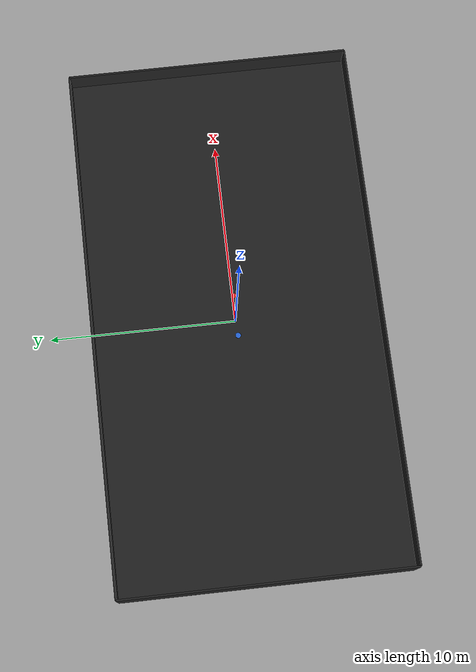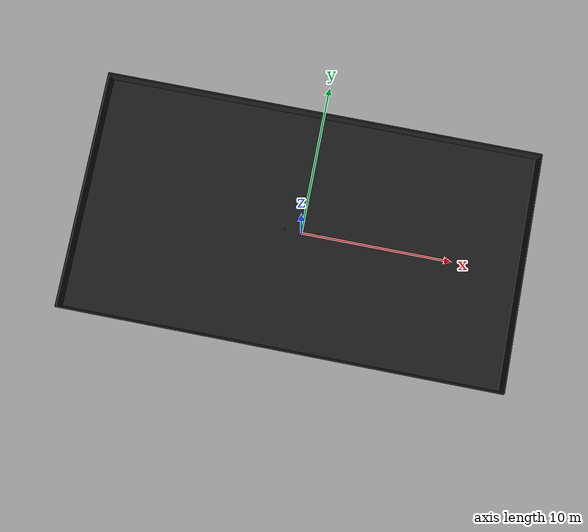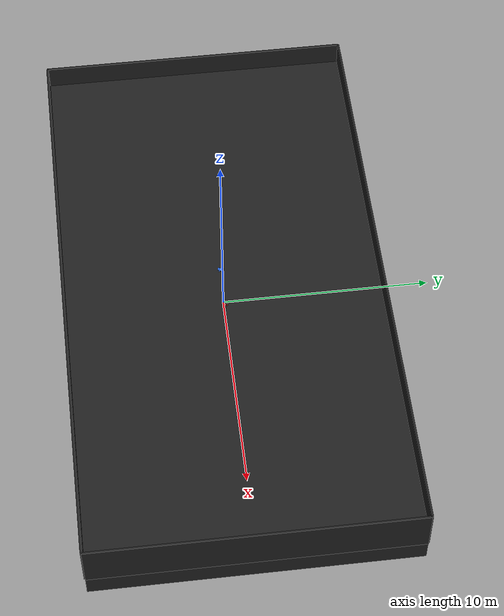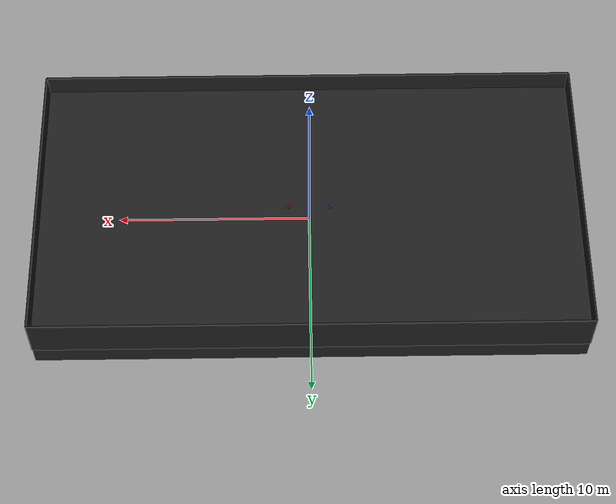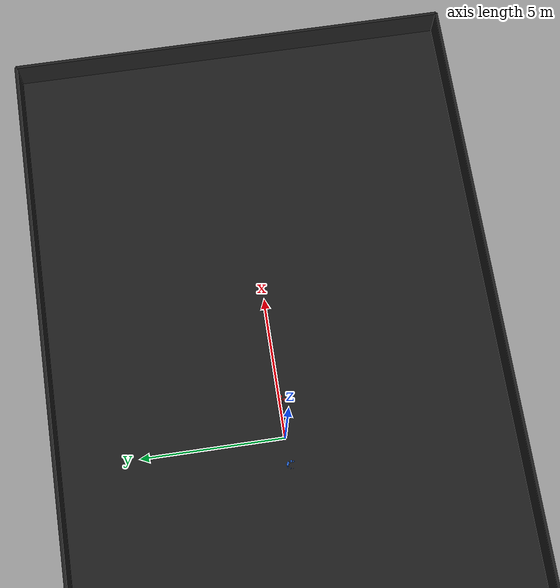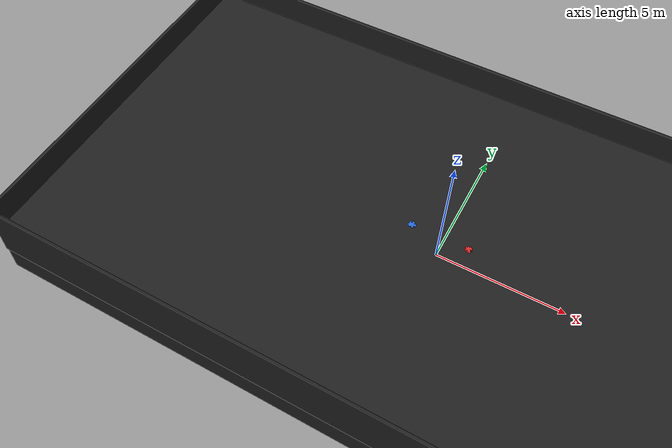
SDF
<sdf version="1.9">
 <world name="robomaster_2027_arena">
  <physics name="1ms" type="ode">
   <max_step_size>0.001</max_step_size>
   <real_time_factor>1.0</real_time_factor>
   <real_time_update_rate>1000</real_time_update_rate>
   <ode>
    <solver><type>quick</type><iters>50</iters><precon_iters>0</precon_iters></solver>
    <constraints>
     <cfm>0.00001</cfm>
     <erp>0.2</erp>
     <contact_max_correcting_vel>200</contact_max_correcting_vel>
    </constraints>
   </ode>
  </physics>
  <scene><shadows>true</shadows><ambient>0.4 0.4 0.4 1</ambient><background>0.7 0.7 0.7 1</background></scene>
  <light type="directional" name="sun">
   <pose>0 0 10 0 0 0</pose>
   <diffuse>0.95 0.95 0.95 1</diffuse>
   <specular>0.2 0.2 0.2 1</specular>
   <direction>0.3 -0.4 -0.9</direction>
  </light>
  <gravity>0 0 -9.80665</gravity>
  <magnetic_field>0 0 0</magnetic_field>
  <atmosphere type="adiabatic"/>
  <audio><device>default</device></audio>
  <model name="floor">
   <static>true</static>
   <link name="floor_link">
    <collision name="floor_col">
     <geometry><box><size>28 15 0.004</size></box></geometry>
     <surface>
      <friction>
       <ode><mu>0.85</mu><mu2>0.85</mu2><slip1>0.0</slip1><slip2>0.0</slip2><fdir1>1 0 0</fdir1></ode>
       <torsional><coefficient>0.85</coefficient><patch_radius>0.02</patch_radius></torsional>
      </friction>
      <contact><ode><kp>1e6</kp><kd>1e2</kd><max_vel>0.01</max_vel><min_depth>0.0001</min_depth></ode></contact>
     </surface>
    </collision>
    <visual name="floor_vis">
     <geometry><box><size>28 15 0.004</size></box></geometry>
     <material>
      <ambient>0.93 0.90 0.86 1</ambient>
      <diffuse>0.93 0.90 0.86 1</diffuse>
      <specular>0.05 0.05 0.05 1</specular>
     </material>
    </visual>
   </link>
   <plugin name="ground_plane" filename="gz-sim-ground-plane-system"/>
  </model>
  <model name="barrier">
   <static>true</static>
   <link name="barrier_link">
    <collision name="barrier_col">
     <geometry><box><size>28.2 15.2 2.4</size></box></geometry>
     <surface><friction><ode><mu>0.4</mu><mu2>0.4</mu2></ode></friction></surface>
    </collision>
    <visual name="barrier_vis">
     <geometry><box><size>28.2 15.2 2.4</size></box></geometry>
     <material><ambient>0.10 0.10 0.10 1</ambient><diffuse>0.12 0.12 0.12 1</diffuse></material>
    </visual>
   </link>
   <link name="wall_n">
    <pose>0 7.6 1.2 0 0 0</pose>
    <collision name="c"><geometry><box><size>28.2 0.1 2.4</size></box></geometry></collision>
    <visual name="v">
     <geometry><box><size>28.2 0.1 2.4</size></box></geometry>
     <material><ambient>0.10 0.10 0.10 1</ambient><diffuse>0.12 0.12 0.12 1</diffuse></material>
    </visual>
   </link>
   <link name="wall_s">
    <pose>0 -7.6 1.2 0 0 0</pose>
    <collision name="c"><geometry><box><size>28.2 0.1 2.4</size></box></geometry></collision>
    <visual name="v">
     <geometry><box><size>28.2 0.1 2.4</size></box></geometry>
     <material><ambient>0.10 0.10 0.10 1</ambient><diffuse>0.12 0.12 0.12 1</diffuse></material>
    </visual>
   </link>
   <link name="wall_e">
    <pose>14.1 0 1.2 0 0 0</pose>
    <collision name="c"><geometry><box><size>0.1 15.2 2.4</size></box></geometry></collision>
    <visual name="v">
     <geometry><box><size>0.1 15.2 2.4</size></box></geometry>
     <material><ambient>0.10 0.10 0.10 1</ambient><diffuse>0.12 0.12 0.12 1</diffuse></material>
    </visual>
   </link>
   <link name="wall_w">
    <pose>-14.1 0 1.2 0 0 0</pose>
    <collision name="c"><geometry><box><size>0.1 15.2 2.4</size></box></geometry></collision>
    <visual name="v">
     <geometry><box><size>0.1 15.2 2.4</size></box></geometry>
     <material><ambient>0.10 0.10 0.10 1</ambient><diffuse>0.12 0.12 0.12 1</diffuse></material>
    </visual>
   </link>
  </model>
  <model name="central_platform">
   <static>true</static>
   <pose>0 0 0.1 0 0 0</pose>
   <link name="link">
    <collision name="c">
     <geometry><box><size>5 2 0.2</size></box></geometry>
     <surface><friction><ode><mu>0.85</mu><mu2>0.85</mu2></ode></friction></surface>
    </collision>
    <visual name="v">
     <geometry><box><size>5 2 0.2</size></box></geometry>
     <material><ambient>0.72 0.68 0.60 1</ambient><diffuse>0.78 0.74 0.66 1</diffuse></material>
    </visual>
   </link>
  </model>
  <model name="energy_pillar_red">
   <static>true</static>
   <pose>1.1 0 0.6 0 0 0</pose>
   <link name="link">
    <collision name="c">
     <geometry><cylinder><radius>0.15</radius><length>1.2</length></cylinder></geometry>
     <surface><friction><ode><mu>0.6</mu><mu2>0.6</mu2></ode></friction></surface>
    </collision>
    <visual name="v">
     <geometry><cylinder><radius>0.15</radius><length>1.2</length></cylinder></geometry>
     <material><ambient>0.85 0.15 0.15 1</ambient><diffuse>0.85 0.15 0.15 1</diffuse></material>
    </visual>
   </link>
  </model>
  <model name="energy_pillar_blue">
   <static>true</static>
   <pose>-1.1 0 0.6 0 0 0</pose>
   <link name="link">
    <collision name="c">
     <geometry><cylinder><radius>0.15</radius><length>1.2</length></cylinder></geometry>
     <surface><friction><ode><mu>0.6</mu><mu2>0.6</mu2></ode></friction></surface>
    </collision>
    <visual name="v">
     <geometry><cylinder><radius>0.15</radius><length>1.2</length></cylinder></geometry>
     <material><ambient>0.15 0.4 0.85 1</ambient><diffuse>0.15 0.4 0.85 1</diffuse></material>
    </visual>
   </link>
  </model>
  <model name="ramp_r3">
   <static>true</static>
   <pose>-7.6 2.5 0 0 0 0</pose>
   <link name="base">
    <collision name="c">
     <geometry><box><size>5.6 2.4 0.4</size></box></geometry>
     <surface><friction><ode><mu>0.85</mu><mu2>0.85</mu2></ode></friction></surface>
    </collision>
    <visual name="v">
     <geometry><box><size>5.6 2.4 0.4</size></box></geometry>
     <material><ambient>0.72 0.68 0.60 1</ambient><diffuse>0.78 0.74 0.66 1</diffuse></material>
    </visual>
   </link>
   <link name="ramp">
    <pose>-2.8 0 0.2 0 -0.114 0</pose>
    <collision name="c">
     <geometry><box><size>5.6 2.4 0.02</size></box></geometry>
     <surface><friction><ode><mu>0.85</mu><mu2>0.85</mu2></ode></friction></surface>
    </collision>
    <visual name="v">
     <geometry><box><size>5.6 2.4 0.02</size></box></geometry>
     <material><ambient>0.72 0.68 0.60 1</ambient><diffuse>0.78 0.74 0.66 1</diffuse></material>
    </visual>
   </link>
  </model>
  <model name="road_platform">
   <static>true</static>
   <pose>6.3 2.9 0.035 0 0 0</pose>
   <link name="link">
    <collision name="c">
     <geometry><box><size>7 2.6 0.07</size></box></geometry>
     <surface><friction><ode><mu>0.8</mu><mu2>0.8</mu2></ode></friction></surface>
    </collision>
    <visual name="v">
     <geometry><box><size>7 2.6 0.07</size></box></geometry>
     <material><ambient>0.80 0.78 0.73 1</ambient><diffuse>0.85 0.83 0.78 1</diffuse></material>
    </visual>
   </link>
  </model>
  <model name="tunnel">
   <static>true</static>
   <pose>6.3 3.6 0.4 0 0 0</pose>
   <link name="top">
    <collision name="c">
     <geometry><box><size>5 0.8 0.05</size></box></geometry>
     <surface><friction><ode><mu>0.6</mu><mu2>0.6</mu2></ode></friction></surface>
    </collision>
    <visual name="v">
     <geometry><box><size>5 0.8 0.05</size></box></geometry>
     <material><ambient>0.60 0.58 0.54 1</ambient><diffuse>0.66 0.64 0.60 1</diffuse></material>
    </visual>
   </link>
   <link name="side_n">
    <pose>0 0.4 0 0 0 0</pose>
    <collision name="c"><geometry><box><size>5 0.05 0.4</size></box></geometry></collision>
    <visual name="v">
     <geometry><box><size>5 0.05 0.4</size></box></geometry>
     <material><ambient>0.60 0.58 0.54 1</ambient><diffuse>0.66 0.64 0.60 1</diffuse></material>
    </visual>
   </link>
   <link name="side_s">
    <pose>0 -0.4 0 0 0 0</pose>
    <collision name="c"><geometry><box><size>5 0.05 0.4</size></box></geometry></collision>
    <visual name="v">
     <geometry><box><size>5 0.05 0.4</size></box></geometry>
     <material><ambient>0.60 0.58 0.54 1</ambient><diffuse>0.66 0.64 0.60 1</diffuse></material>
    </visual>
   </link>
  </model>
  <model name="base_red">
   <static>true</static>
   <pose>10.9 0 0 0 0 0</pose>
   <link name="body">
    <collision name="c">
     <geometry><box><size>2.4 3 1.2</size></box></geometry>
     <surface><friction><ode><mu>0.6</mu><mu2>0.6</mu2></ode></friction></surface>
    </collision>
    <visual name="v">
     <geometry><box><size>2.4 3 1.2</size></box></geometry>
     <material><ambient>0.80 0.18 0.18 1</ambient><diffuse>0.85 0.22 0.22 1</diffuse></material>
    </visual>
   </link>
  </model>
  <model name="base_blue">
   <static>true</static>
   <pose>-10.9 0 0 0 0 0</pose>
   <link name="body">
    <collision name="c">
     <geometry><box><size>2.4 3 1.2</size></box></geometry>
     <surface><friction><ode><mu>0.6</mu><mu2>0.6</mu2></ode></friction></surface>
    </collision>
    <visual name="v">
     <geometry><box><size>2.4 3 1.2</size></box></geometry>
     <material><ambient>0.18 0.38 0.80 1</ambient><diffuse>0.22 0.44 0.85 1</diffuse></material>
    </visual>
   </link>
  </model>
  <model name="outpost_red">
   <static>true</static>
   <pose>6.8 0 0 0 0 0</pose>
   <link name="body">
    <collision name="c">
     <geometry><box><size>1.6 1.6 1.0</size></box></geometry>
     <surface><friction><ode><mu>0.6</mu><mu2>0.6</mu2></ode></friction></surface>
    </collision>
    <visual name="v">
     <geometry><box><size>1.6 1.6 1.0</size></box></geometry>
     <material><ambient>0.60 0.58 0.54 1</ambient><diffuse>0.66 0.64 0.60 1</diffuse></material>
    </visual>
   </link>
  </model>
  <model name="outpost_blue">
   <static>true</static>
   <pose>-6.8 0 0 0 0 0</pose>
   <link name="body">
    <collision name="c">
     <geometry><box><size>1.6 1.6 1.0</size></box></geometry>
     <surface><friction><ode><mu>0.6</mu><mu2>0.6</mu2></ode></friction></surface>
    </collision>
    <visual name="v">
     <geometry><box><size>1.6 1.6 1.0</size></box></geometry>
     <material><ambient>0.60 0.58 0.54 1</ambient><diffuse>0.66 0.64 0.60 1</diffuse></material>
    </visual>
   </link>
  </model>
  <model name="dart_station_red">
   <static>true</static>
   <pose>12 4.2 0 0 0 0</pose>
   <link name="body">
    <collision name="c">
     <geometry><box><size>1.6 1.4 1.0</size></box></geometry>
     <surface><friction><ode><mu>0.6</mu><mu2>0.6</mu2></ode></friction></surface>
    </collision>
    <visual name="v">
     <geometry><box><size>1.6 1.4 1.0</size></box></geometry>
     <material><ambient>0.80 0.18 0.18 1</ambient><diffuse>0.85 0.22 0.22 1</diffuse></material>
    </visual>
   </link>
  </model>
  <model name="dart_station_blue">
   <static>true</static>
   <pose>-12 4.2 0 0 0 0</pose>
   <link name="body">
    <collision name="c">
     <geometry><box><size>1.6 1.4 1.0</size></box></geometry>
     <surface><friction><ode><mu>0.6</mu><mu2>0.6</mu2></ode></friction></surface>
    </collision>
    <visual name="v">
     <geometry><box><size>1.6 1.4 1.0</size></box></geometry>
     <material><ambient>0.18 0.38 0.80 1</ambient><diffuse>0.22 0.44 0.85 1</diffuse></material>
    </visual>
   </link>
  </model>
  <model name="supply_red">
   <static>true</static>
   <pose>4.5 -4 0 0 0 0</pose>
   <link name="body">
    <collision name="c">
     <geometry><box><size>2.4 1.6 0.6</size></box></geometry>
     <surface><friction><ode><mu>0.7</mu><mu2>0.7</mu2></ode></friction></surface>
    </collision>
    <visual name="v">
     <geometry><box><size>2.4 1.6 0.6</size></box></geometry>
     <material><ambient>0.72 0.85 0.72 1</ambient><diffuse>0.78 0.90 0.78 1</diffuse></material>
    </visual>
   </link>
  </model>
  <model name="supply_blue">
   <static>true</static>
   <pose>-4.5 -4 0 0 0 0</pose>
   <link name="body">
    <collision name="c">
     <geometry><box><size>2.4 1.6 0.6</size></box></geometry>
     <surface><friction><ode><mu>0.7</mu><mu2>0.7</mu2></ode></friction></surface>
    </collision>
    <visual name="v">
     <geometry><box><size>2.4 1.6 0.6</size></box></geometry>
     <material><ambient>0.72 0.85 0.72 1</ambient><diffuse>0.78 0.90 0.78 1</diffuse></material>
    </visual>
   </link>
  </model>
  <model name="assembly_red">
   <static>true</static>
   <pose>3.5 4.9 0 0 0 0</pose>
   <link name="body">
    <collision name="c">
     <geometry><box><size>2 1.2 0.6</size></box></geometry>
     <surface><friction><ode><mu>0.7</mu><mu2>0.7</mu2></ode></friction></surface>
    </collision>
    <visual name="v">
     <geometry><box><size>2 1.2 0.6</size></box></geometry>
     <material><ambient>0.85 0.80 0.68 1</ambient><diffuse>0.90 0.86 0.74 1</diffuse></material>
    </visual>
   </link>
  </model>
  <model name="assembly_blue">
   <static>true</static>
   <pose>-3.5 4.9 0 0 0 0</pose>
   <link name="body">
    <collision name="c">
     <geometry><box><size>2 1.2 0.6</size></box></geometry>
     <surface><friction><ode><mu>0.7</mu><mu2>0.7</mu2></ode></friction></surface>
    </collision>
    <visual name="v">
     <geometry><box><size>2 1.2 0.6</size></box></geometry>
     <material><ambient>0.85 0.80 0.68 1</ambient><diffuse>0.90 0.86 0.74 1</diffuse></material>
    </visual>
   </link>
  </model>
  <model name="wireless_charge_red">
   <static>true</static>
   <pose>9.5 4.6 0 0 0 0</pose>
   <link name="body">
    <collision name="c">
     <geometry><box><size>1.8 1.4 0.4</size></box></geometry>
     <surface><friction><ode><mu>0.7</mu><mu2>0.7</mu2></ode></friction></surface>
    </collision>
    <visual name="v">
     <geometry><box><size>1.8 1.4 0.4</size></box></geometry>
     <material><ambient>0.90 0.82 0.64 1</ambient><diffuse>0.94 0.88 0.72 1</diffuse></material>
    </visual>
   </link>
  </model>
  <model name="wireless_charge_blue">
   <static>true</static>
   <pose>-9.5 4.6 0 0 0 0</pose>
   <link name="body">
    <collision name="c">
     <geometry><box><size>1.8 1.4 0.4</size></box></geometry>
     <surface><friction><ode><mu>0.7</mu><mu2>0.7</mu2></ode></friction></surface>
    </collision>
    <visual name="v">
     <geometry><box><size>1.8 1.4 0.4</size></box></geometry>
     <material><ambient>0.90 0.82 0.64 1</ambient><diffuse>0.94 0.88 0.72 1</diffuse></material>
    </visual>
   </link>
  </model>
  <model name="rough_road">
   <static>true</static>
   <pose>9.8 1.4 0.035 0 0 0</pose>
   <link name="body">
    <collision name="c">
     <geometry><box><size>1.8 1.2 0.07</size></box></geometry>
     <surface><friction><ode><mu>0.8</mu><mu2>0.8</mu2></ode></friction></surface>
    </collision>
    <visual name="v">
     <geometry><box><size>1.8 1.2 0.07</size></box></geometry>
     <material><ambient>0.66 0.64 0.60 1</ambient><diffuse>0.72 0.70 0.66 1</diffuse></material>
    </visual>
   </link>
  </model>
  <model name="energy_zone_red">
   <static>true</static>
   <pose>10.5 -2.8 0 0 0 0</pose>
   <link name="body">
    <collision name="c">
     <geometry><box><size>1.5 1.2 0.4</size></box></geometry>
     <surface><friction><ode><mu>0.7</mu><mu2>0.7</mu2></ode></friction></surface>
    </collision>
    <visual name="v">
     <geometry><box><size>1.5 1.2 0.4</size></box></geometry>
     <material><ambient>0.90 0.78 0.78 1</ambient><diffuse>0.94 0.84 0.84 1</diffuse></material>
    </visual>
   </link>
  </model>
  <model name="energy_zone_blue">
   <static>true</static>
   <pose>-10.5 -2.8 0 0 0 0</pose>
   <link name="body">
    <collision name="c">
     <geometry><box><size>1.5 1.2 0.4</size></box></geometry>
     <surface><friction><ode><mu>0.7</mu><mu2>0.7</mu2></ode></friction></surface>
    </collision>
    <visual name="v">
     <geometry><box><size>1.5 1.2 0.4</size></box></geometry>
     <material><ambient>0.90 0.78 0.78 1</ambient><diffuse>0.94 0.84 0.84 1</diffuse></material>
    </visual>
   </link>
  </model>
  <model name="start_zone_red">
   <static>true</static>
   <pose>10.9 -4.6 0 0 0 0</pose>
   <link name="body">
    <collision name="c">
     <geometry><box><size>2.2 1.6 0.02</size></box></geometry>
     <surface><friction><ode><mu>0.9</mu><mu2>0.9</mu2></ode></friction></surface>
    </collision>
    <visual name="v">
     <geometry><box><size>2.2 1.6 0.02</size></box></geometry>
     <material><ambient>0.85 0.83 0.80 1</ambient><diffuse>0.90 0.88 0.86 1</diffuse></material>
    </visual>
   </link>
  </model>
  <model name="start_zone_blue">
   <static>true</static>
   <pose>-10.9 -4.6 0 0 0 0</pose>
   <link name="body">
    <collision name="c">
     <geometry><box><size>2.2 1.6 0.02</size></box></geometry>
     <surface><friction><ode><mu>0.9</mu><mu2>0.9</mu2></ode></friction></surface>
    </collision>
    <visual name="v">
     <geometry><box><size>2.2 1.6 0.02</size></box></geometry>
     <material><ambient>0.85 0.83 0.80 1</ambient><diffuse>0.90 0.88 0.86 1</diffuse></material>
    </visual>
   </link>
  </model>
  <plugin name="physics_logger" filename="gz-sim-physics-system"/>
 </world>
</sdf>
